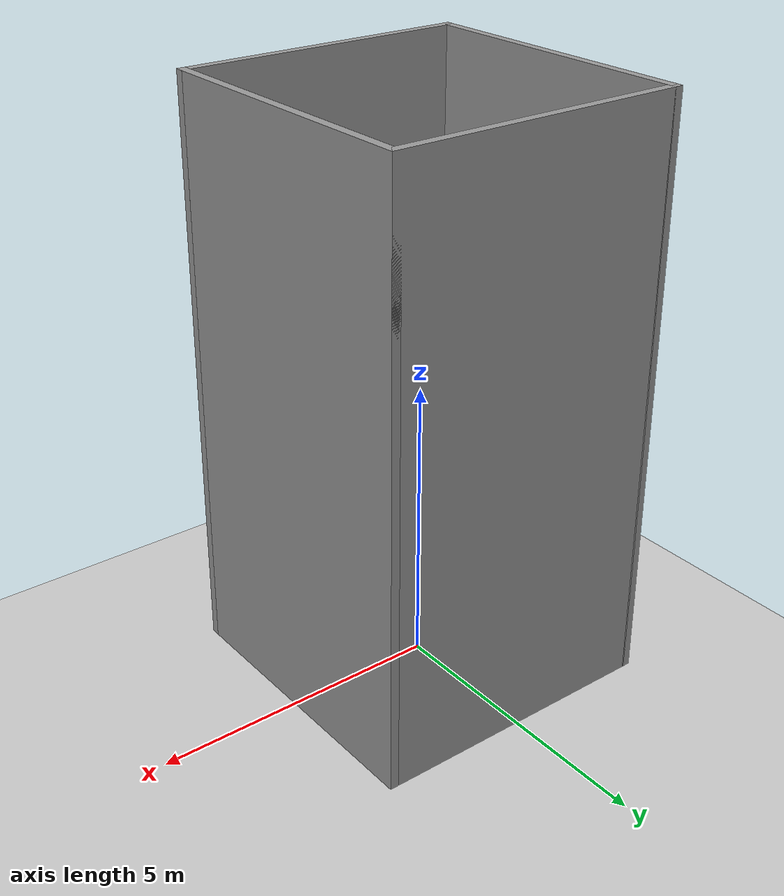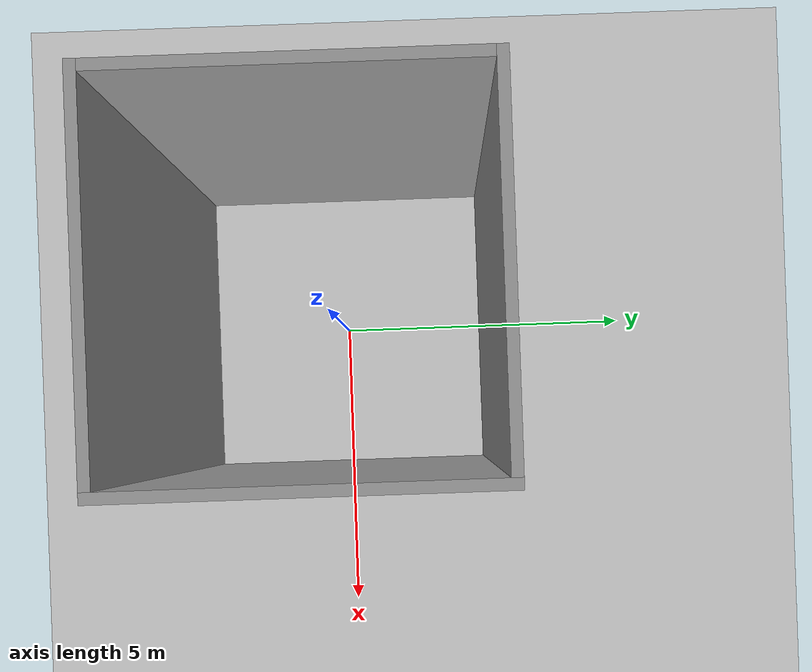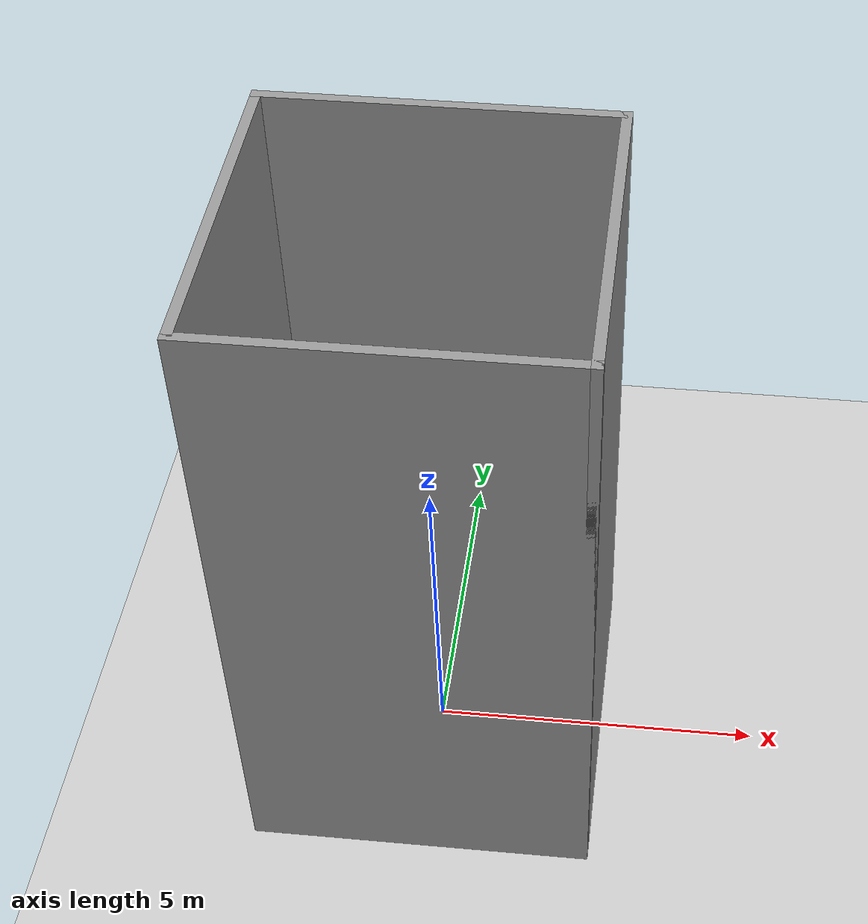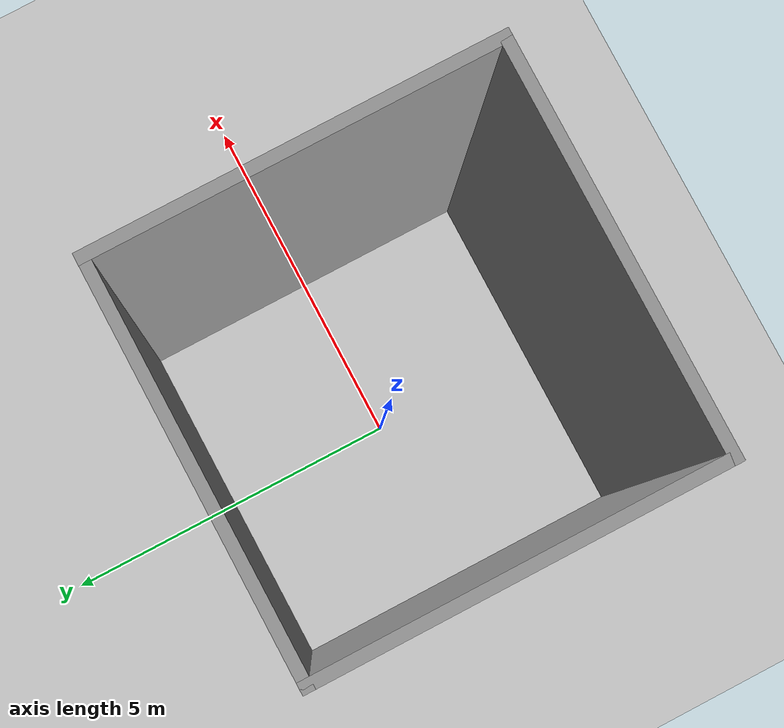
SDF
<sdf version="1.6">
 <world name="default">
  <model name="ground_plane">
   <static>1</static>
   <link name="link">
    <collision name="collision">
     <geometry><plane><normal>0 0 1</normal><size>100 100</size></plane></geometry>
     <surface><friction><ode><mu>100</mu><mu2>50</mu2></ode></friction></surface>
    </collision>
    <visual name="visual">
     <cast_shadows>0</cast_shadows>
     <geometry><plane><normal>0 0 1</normal><size>100 100</size></plane></geometry>
     <material>
      <script><uri>file://media/materials/scripts/gazebo.material</uri><name>Gazebo/Grey</name></script>
     </material>
    </visual>
   </link>
  </model>
  <light name="sun" type="directional">
   <pose>0 0 10 0 -0 0</pose>
   <diffuse>0.8 0.8 0.8 1</diffuse>
   <specular>0.1 0.1 0.1 1</specular>
   <attenuation>
    <range>1000</range>
    <constant>0.9</constant>
    <linear>0.01</linear>
    <quadratic>0.001</quadratic>
   </attenuation>
   <direction>-0.5 0.5 -1</direction>
  </light>
  <physics name="default_physics" default="0" type="ode">
   <ode>
    <solver>
     <type>quick</type>
     <iters>10</iters>
     <sor>1.3</sor>
     <use_dynamic_moi_rescaling>0</use_dynamic_moi_rescaling>
    </solver>
    <constraints>
     <cfm>0</cfm>
     <erp>0.2</erp>
     <contact_max_correcting_vel>10</contact_max_correcting_vel>
     <contact_surface_layer>0.001</contact_surface_layer>
    </constraints>
   </ode>
   <max_step_size>0.001</max_step_size>
   <real_time_factor>1</real_time_factor>
   <real_time_update_rate>1000</real_time_update_rate>
  </physics>
  <gravity>0 0 -9.81</gravity>
  <magnetic_field>6e-06 2.3e-05 -4.2e-05</magnetic_field>
  <atmosphere type="adiabatic"/>
  <scene><ambient>0.4 0.4 0.4 1</ambient><background>0.7 0.7 0.7 1</background><shadows>1</shadows></scene>
  <spherical_coordinates>
   <surface_model>EARTH_WGS84</surface_model>
   <latitude_deg>0</latitude_deg>
   <longitude_deg>0</longitude_deg>
   <elevation>0</elevation>
   <heading_deg>0</heading_deg>
  </spherical_coordinates>
  <model name="tall_walls">
   <link name="Wall_10">
    <collision name="Wall_10_Collision">
     <geometry><box><size>5.15 0.15 10</size></box></geometry>
     <pose>0 0 5 0 -0 0</pose>
    </collision>
    <visual name="Wall_10_Visual">
     <pose>0 0 5 0 -0 0</pose>
     <geometry><box><size>5.15 0.15 10</size></box></geometry>
     <material>
      <script><uri>file://media/materials/scripts/gazebo.material</uri><name>Gazebo/Grey</name></script>
      <ambient>1 1 1 1</ambient>
     </material>
    </visual>
    <pose>2.5 0 0 0 0 -1.5708</pose>
   </link>
   <link name="Wall_14">
    <collision name="Wall_14_Collision">
     <geometry><box><size>5.15 0.15 10</size></box></geometry>
     <pose>0 0 5 0 -0 0</pose>
    </collision>
    <visual name="Wall_14_Visual">
     <pose>0 0 5 0 -0 0</pose>
     <geometry><box><size>5.15 0.15 10</size></box></geometry>
     <material>
      <script><uri>file://media/materials/scripts/gazebo.material</uri><name>Gazebo/Grey</name></script>
      <ambient>1 1 1 1</ambient>
     </material>
    </visual>
    <pose>0 2.5 0 0 -0 0</pose>
   </link>
   <link name="Wall_5">
    <collision name="Wall_5_Collision">
     <geometry><box><size>5.15 0.15 10</size></box></geometry>
     <pose>0 0 5 0 -0 0</pose>
    </collision>
    <visual name="Wall_5_Visual">
     <pose>0 0 5 0 -0 0</pose>
     <geometry><box><size>5.15 0.15 10</size></box></geometry>
     <material>
      <script><uri>file://media/materials/scripts/gazebo.material</uri><name>Gazebo/Grey</name></script>
      <ambient>1 1 1 1</ambient>
     </material>
    </visual>
    <pose>0 -2.5 0 0 -0 0</pose>
   </link>
   <link name="Wall_7">
    <collision name="Wall_7_Collision">
     <geometry><box><size>5.15 0.15 10</size></box></geometry>
     <pose>0 0 5 0 -0 0</pose>
    </collision>
    <visual name="Wall_7_Visual">
     <pose>0 0 5 0 -0 0</pose>
     <geometry><box><size>5.15 0.15 10</size></box></geometry>
     <material>
      <script><uri>file://media/materials/scripts/gazebo.material</uri><name>Gazebo/Grey</name></script>
      <ambient>1 1 1 1</ambient>
     </material>
    </visual>
    <pose>-2.5 0 0 0 -0 1.5708</pose>
   </link>
   <static>1</static>
  </model>
 </world>
</sdf>
